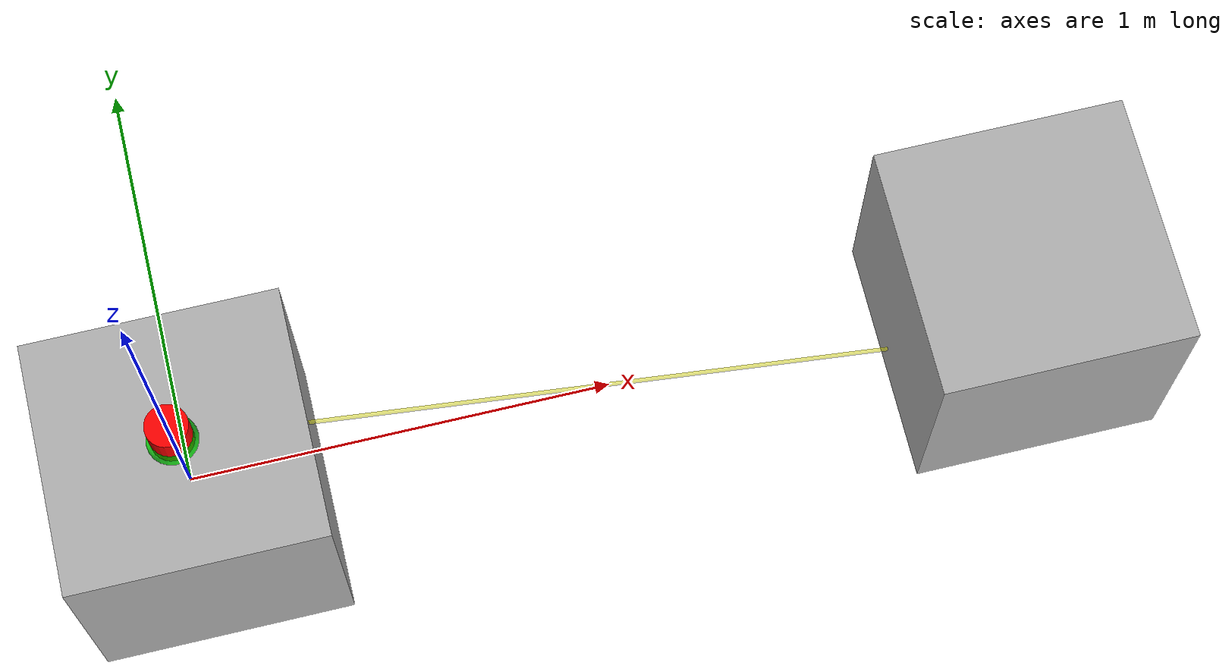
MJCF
<!-- xml_references/satellites.xml -->
<mujoco model="satellites">
  <compiler angle="degree" />
  <option timestep="0.01" gravity="0 0 0" />

  <visual>
    <!-- Higher resolution for offscreen rendering -->
    <global offwidth="1280" offheight="720" />
    <!-- Make joints visible for debugging -->
    <map force="0.1" zfar="40"/>
  </visual>

  <asset>
      <!-- Optional: Add textures or materials here if desired -->
  </asset>

  <default>
    <!-- Default geom properties -->
    <geom contype="1" conaffinity="1" friction="0.1" density="1000" rgba="0.7 0.7 0.7 1"/>
    <!-- Default joint properties -->
    <joint type="free" damping="0.3"/>  <!-- Add some damping to free joints -->
  </default>

  <worldbody>
    <!-- Lighting -->
    <light directional="true" diffuse=".8 .8 .8" specular=".2 .2 .2" pos="0 0 10" dir="0 0 -1"/>
    <light directional="true" diffuse=".5 .5 .5" specular=".1 .1 .1" pos="0 0 -10" dir="0 0 1"/>

    <!-- Cameras -->
    <camera name="track_servicer" mode="trackcom" target="servicer" pos="0 -5 1"/>
    <camera name="fixed_side" pos="15 0 0" xyaxes="0 1 0 -0.1 -0 1"/> <!-- Adjusted xyaxes for better view -->
    <camera name="fixed_top" pos="0 0 5" xyaxes="1 0 0 0 1 0"/>

    <!-- Servicer Satellite -->
    <body name="servicer" pos="0 0 0">
      <freejoint name="servicer_joint"/>
      <!-- Main body -->
      <geom name="servicer_body" type="box" size=".3 .3 .3" /> <!-- Slightly smaller -->
      <!-- Docking port protrusion -->
      <geom name="servicer_dock_port" type="cylinder" pos="0 0 0.3" size="0.05 0.1" rgba="1 0 0 1"/>
      <!-- Docking detection site -->
      <site name="servicer_dock_site" pos="0 0 0.3" size="0.06" rgba="0 1 0 0.8" /> <!-- Slightly smaller site -->
    </body>

    <!-- Target Satellite -->
    <body name="target" pos="2 0 0"> <!-- Initial separation -->
      <freejoint name="target_joint"/>
      <!-- Main body -->
      <geom name="target_body" type="box" size=".3 .3 .3" /> <!-- Slightly smaller -->
      <!-- Docking cavity (visual only, not physical cavity here) -->
      <geom name="target_dock_cavity_vis" type="cylinder" pos="0 0 -0.3" size="0.07 0.05" rgba="0 0 1 0.5"/>
      <!-- Docking detection site -->
      <site name="target_dock_site" pos="0 0 -0.3" size="0.06" rgba="0 1 0 0.8" /> <!-- Slightly smaller site -->
    </body>
  </worldbody>

  <actuator>
      <!-- Servicer Thrusters (Example: 6DOF control - 3 force, 3 torque) -->
      <motor joint="servicer_joint" name="servicer_thrust_x" gear="0 0 0 0 0 0" ctrllimited="true" ctrlrange="-1 1"/> <!-- Placeholder, needs proper type -->
      <!-- TODO: Define proper actuators (e.g., thrusters) later for force/torque application -->
      <!-- Using xfrc_applied for now as it's simpler to start with -->
  </actuator>

  <!-- Optional: Tendon to visualize distance between docking sites -->
  <tendon>
    <spatial name="docking_distance_visual" limited="false" width="0.005" rgba="1 1 0 0.5">
      <site site="servicer_dock_site"/>
      <site site="target_dock_site"/>
    </spatial>
  </tendon>

</mujoco>
